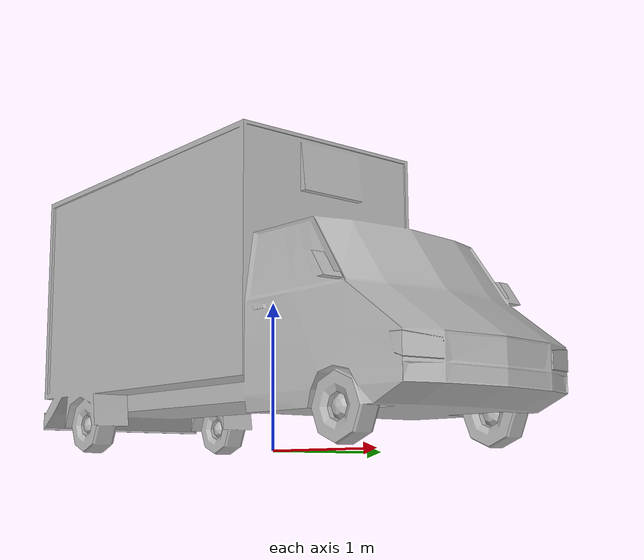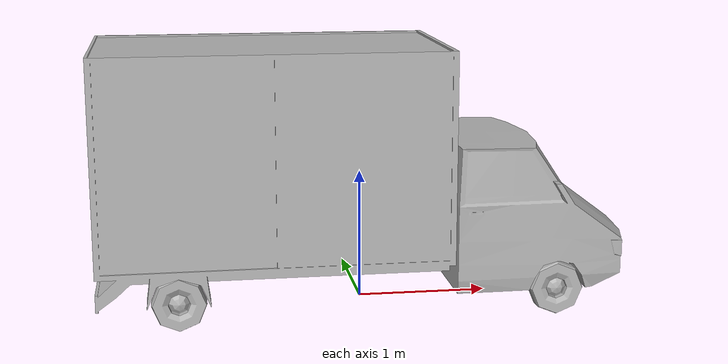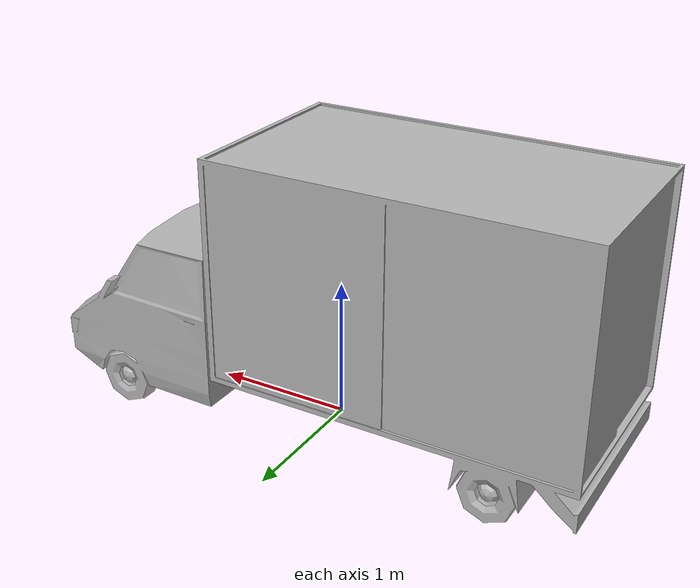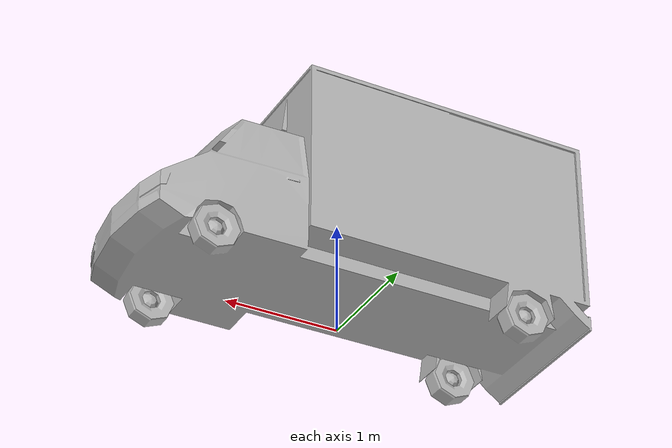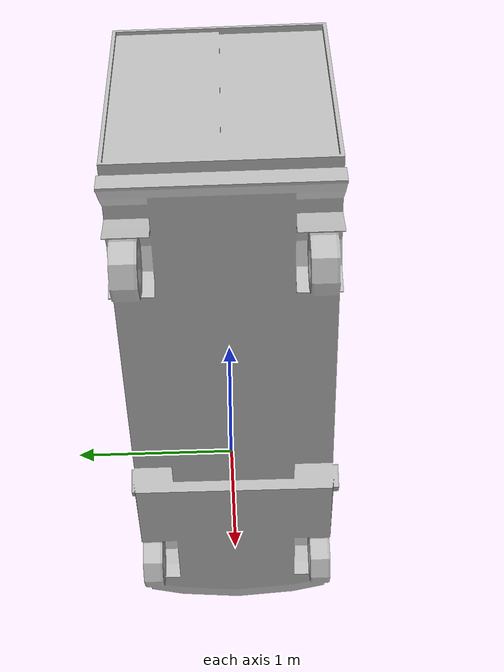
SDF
<?xml version="1.0"?>

<sdf version="1.6">
  <model name='truck_box'>
    <link name="body">
      <pose>0 0 0 0 0 0</pose>

      <visual name="visual">
        <geometry>
          <mesh>
            <uri>model://truck_box/meshes/truck.obj</uri>
          </mesh>
        </geometry>
      </visual>

      <collision name="collision">
        <geometry>
          <mesh>
            <uri>model://truck_box/meshes/truck.obj</uri>
          </mesh>
        </geometry>
      </collision>

    </link>
  </model>
</sdf>
